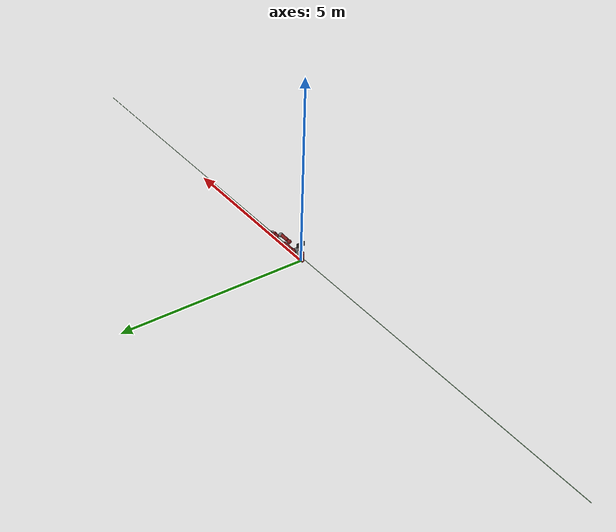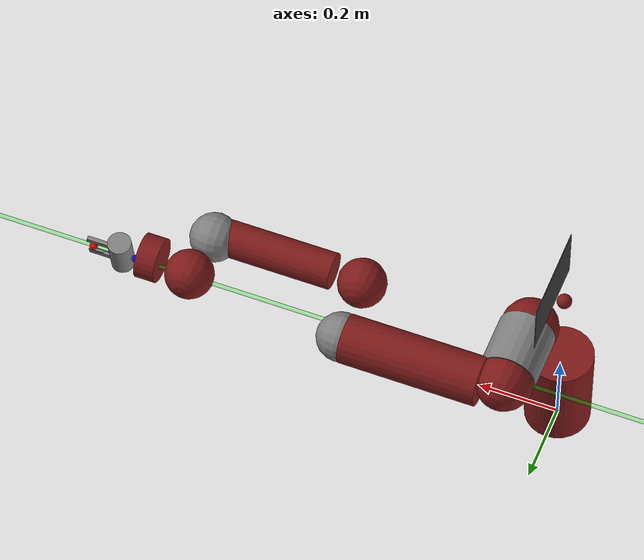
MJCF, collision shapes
<mujoco model="sawyer">
    <actuator>
    	<motor ctrllimited="true" ctrlrange="-80.0 80.0" joint="right_j0" name="torq_right_j0"/>
    	<motor ctrllimited="true" ctrlrange="-80.0 80.0" joint="right_j1" name="torq_right_j1"/>
    	<motor ctrllimited="true" ctrlrange="-40.0 40.0" joint="right_j2" name="torq_right_j2"/>
    	<motor ctrllimited="true" ctrlrange="-40.0 40.0" joint="right_j3" name="torq_right_j3"/>
    	<motor ctrllimited="true" ctrlrange="-9.0 9.0" joint="right_j4" name="torq_right_j4"/>
    	<motor ctrllimited="true" ctrlrange="-9.0 9.0" joint="right_j5" name="torq_right_j5"/>
    	<motor ctrllimited="true" ctrlrange="-9.0 9.0" joint="right_j6" name="torq_right_j6"/>
        <position ctrllimited="true" ctrlrange="-0.0115 0.020833" joint="r_finger_joint" kp="10000" name="gripper_r_finger_joint" forcelimited="true" forcerange="-20 20"/>
        <position ctrllimited="true" ctrlrange="-0.020833 0.0115" joint="l_finger_joint" kp="10000" name="gripper_l_finger_joint" forcelimited="true" forcerange="-20 20"/>
    </actuator>
    <asset>
    	<mesh file="robot_info/sawyer/meshes/base.stl" name="base"/>
    	<mesh file="robot_info/sawyer/meshes/l0.stl" name="l0"/>
    	<mesh file="robot_info/sawyer/meshes/head.stl" name="head"/>
    	<mesh file="robot_info/sawyer/meshes/l1.stl" name="l1"/>
    	<mesh file="robot_info/sawyer/meshes/l2.stl" name="l2"/>
    	<mesh file="robot_info/sawyer/meshes/l3.stl" name="l3"/>
    	<mesh file="robot_info/sawyer/meshes/l4.stl" name="l4"/>
    	<mesh file="robot_info/sawyer/meshes/l5.stl" name="l5"/>
    	<mesh file="robot_info/sawyer/meshes/l6.stl" name="l6"/>
        <mesh name="electric_gripper_base" file="robot_info/sawyer/meshes/rethink_gripper/electric_gripper_base.stl" />
        <mesh name="standard_narrow" file="robot_info/sawyer/meshes/rethink_gripper/standard_narrow.stl" />
        <mesh name="half_round_tip" file="robot_info/sawyer/meshes/rethink_gripper/half_round_tip.stl" />
        <mesh name="connector_plate" file="robot_info/sawyer/meshes/rethink_gripper/connector_plate.stl" />
    </asset>
    <worldbody>
    	<body name="base" pos="0 0 0">
			<!-- robot view -->
			<camera mode="fixed" name="robotview" pos="1.0 0 0.4" quat="0.653 0.271 0.271 0.653"/>
    		<inertial diaginertia="0 0 0" mass="0" pos="0 0 0"/>
            <!-- mount attached here -->
    		<body name="right_arm_base_link" pos="0 0 0">
    			<inertial diaginertia="0.00740351 0.00681776 0.00672942" mass="2.0687" pos="-0.0006241 -2.8025e-05 0.065404" quat="-0.209285 0.674441 0.227335 0.670558"/>
    			<geom conaffinity="0" contype="0" group="1" mesh="base" type="mesh" name="base_vis" rgba="0.5 0.1 0.1 1"/>
    			<geom pos="0 0 0.12" rgba="0.5 0.1 0.1 1" size="0.08 0.12" type="cylinder" name="base_col"/>
    			<body name="right_l0" pos="0 0 0.08">
    				<inertial diaginertia="0.0651588 0.0510944 0.0186218" mass="5.3213" pos="0.024366 0.010969 0.14363" quat="0.894823 0.00899958 -0.170275 0.412573"/>
    				<joint type="hinge" axis="0 0 1" limited="true" name="right_j0" pos="0 0 0" range="-3.0503 3.0503"/>
    				<geom conaffinity="0" contype="0" group="1" mesh="l0" type="mesh" name="link0_visual" rgba="0.5 0.1 0.1 1"/>
    				<geom pos="0.08 0 0.23" rgba="0.5 0.1 0.1 1" size="0.07" name="link0_collision"/>
    				<body name="head" pos="0 0 0.2965">
    					<inertial diaginertia="0.0118334 0.00827089 0.00496574" mass="1.5795" pos="0.0053207 -2.6549e-05 0.1021" quat="0.999993 7.08405e-05 -0.00359857 -0.000626247"/>
    					<!--Don't want to control the head joint so remove it from the kinematic tree-->
    					<geom conaffinity="0" contype="0" group="1" mesh="head" type="mesh" name="head_visual" rgba="0.5 0.1 0.1 1"/>
    					<geom pos="0 0 0.08" rgba="0.5 0.1 0.1 1" size="0.018" name="head_collision"/>
    					<body name="screen" pos="0.03 0 0.105" quat="0.5 0.5 0.5 0.5">
    						<inertial diaginertia="1e-08 1e-08 1e-08" mass="0.0001" pos="0 0 0"/>
    						<geom conaffinity="0" contype="0" group="1" size="0.12 0.07 0.001" type="box" name="screen_visual" rgba="0.2 0.2 0.2 1"/>
    						<geom rgba="0.2 0.2 0.2 1" size="0.001" name="screen_collision"/>
    					</body>
    					<body name="head_camera" pos="0.0228027 0 0.216572" quat="0.342813 -0.618449 0.618449 -0.342813">
    						<inertial diaginertia="0 0 0" mass="0" pos="0.0228027 0 0.216572" quat="0.342813 -0.618449 0.618449 -0.342813"/>
    					</body>
    				</body>
    				<body name="right_torso_itb" pos="-0.055 0 0.22" quat="0.707107 0 -0.707107 0">
    					<inertial diaginertia="1e-08 1e-08 1e-08" mass="0.0001" pos="0 0 0"/>
    				</body>
    				<body name="right_l1" pos="0.081 0.05 0.237" quat="0.5 -0.5 0.5 0.5">
    					<inertial diaginertia="0.0224339 0.0221624 0.0097097" mass="4.505" pos="-0.0030849 -0.026811 0.092521" quat="0.424888 0.891987 0.132364 -0.0794296"/>
    					<joint type="hinge" axis="0 0 1" limited="true" name="right_j1" pos="0 0 0" range="-3.8095 2.2736"/>
    					<geom conaffinity="0" contype="0" group="1" mesh="l1" type="mesh" name="link1_visual" rgba="0.5 0.1 0.1 1"/>
    					<geom pos="0 0 0.1225" rgba="0.5 0.1 0.1 1" size="0.07" name="link1_collision"/>
    					<body name="right_l2" pos="0 -0.14 0.1425" quat="0.707107 0.707107 0 0">
    						<inertial diaginertia="0.0257928 0.025506 0.00292515" mass="1.745" pos="-0.00016044 -0.014967 0.13582" quat="0.707831 -0.0524761 0.0516007 0.702537"/>
    						<joint type="hinge" axis="0 0 1" limited="true" name="right_j2" pos="0 0 0" range="-3.0426 3.0426"/>
    						<geom conaffinity="0" contype="0" group="1" mesh="l2" type="mesh" name="link2_visual" rgba="0.5 0.1 0.1 1"/>
    						<geom pos="0 0 0.08" rgba="0.5 0.1 0.1 1" size="0.06 0.17" type="cylinder" name="link2_collision"/>
    						<body name="right_l3" pos="0 -0.042 0.26" quat="0.707107 -0.707107 0 0">
    							<inertial diaginertia="0.0102404 0.0096997 0.00369622" mass="2.5097" pos="-0.0048135 -0.0281 -0.084154" quat="0.902999 0.385391 -0.0880901 0.168247"/>
    							<joint type="hinge" axis="0 0 1" limited="true" name="right_j3" pos="0 0 0" range="-3.0439 3.0439"/>
    							<geom conaffinity="0" contype="0" group="1" mesh="l3" type="mesh" name="link3_visual" rgba="0.5 0.1 0.1 1"/>
    							<geom pos="0 -0.01 -0.12" rgba="0.5 0.1 0.1 1" size="0.06" name="link3_collision"/>
    							<body name="right_l4" pos="0 -0.125 -0.1265" quat="0.707107 0.707107 0 0">
    								<inertial diaginertia="0.0136549 0.0135493 0.00127353" mass="1.1136" pos="-0.0018844 0.0069001 0.1341" quat="0.803612 0.031257 -0.0298334 0.593582"/>
    								<joint type="hinge" axis="0 0 1" limited="true" name="right_j4" pos="0 0 0" range="-2.9761 2.9761"/>
    								<geom conaffinity="0" contype="0" group="1" mesh="l4" type="mesh" name="link4_visual" rgba="0.5 0.1 0.1 1"/>
    								<geom pos="0 0 0.11" rgba="0.5 0.1 0.1 1" size="0.045 0.15" type="cylinder" name="link4_collision"/>
    								<body name="right_arm_itb" pos="-0.055 0 0.075" quat="0.707107 0 -0.707107 0">
    									<inertial diaginertia="1e-08 1e-08 1e-08" mass="0.0001" pos="0 0 0"/>
    								</body>
    								<body name="right_l5" pos="0 0.031 0.275" quat="0.707107 -0.707107 0 0">
    									<inertial diaginertia="0.00474131 0.00422857 0.00190672" mass="1.5625" pos="0.0061133 -0.023697 0.076416" quat="0.404076 0.9135 0.0473125 0.00158335"/>
    									<joint type="hinge" axis="0 0 1" limited="true" name="right_j5" pos="0 0 0" range="-2.9761 2.9761" damping="0.2"/>
    									<geom conaffinity="0" contype="0" group="1" mesh="l5" type="mesh" name="link5_visual" rgba="0.5 0.1 0.1 1"/>
    									<geom pos="0 0 0.1" rgba="0.5 0.1 0.1 1" size="0.06" name="link5_collision"/>
    									<body name="right_hand_camera" pos="0.039552 -0.033 0.0695" quat="0.707107 0 0.707107 0">
    										<inertial diaginertia="0 0 0" mass="0" pos="0.039552 -0.033 0.0695" quat="0.707107 0 0.707107 0"/>
    									</body>
    									<body name="right_wrist" pos="0 0 0.10541" quat="0.707107 0.707107 0 0">
    										<inertial diaginertia="0 0 0" mass="0" pos="0 0 0.10541" quat="0.707107 0.707107 0 0"/>
    									</body>
    									<body name="right_l6" pos="0 -0.11 0.1053" quat="0.0616248 0.06163 -0.704416 0.704416">
    										<inertial diaginertia="0.000360258 0.000311068 0.000214974" mass="0.3292" pos="-8.0726e-06 0.0085838 -0.0049566" quat="0.479044 0.515636 -0.513069 0.491322"/>
    										<joint type="hinge" axis="0 0 1" limited="true" name="right_j6" pos="0 0 0" range="-4.7124 4.7124" damping="0.1"/>
    										<geom conaffinity="0" contype="0" group="1" mesh="l6" type="mesh" name="link6_visual" rgba="0.5 0.1 0.1 1"/>
    										<geom pos="0 0.015 -0.01" rgba="0.5 0.1 0.1 1" size="0.055 0.025" type="cylinder" name="link6_collision"/>
    										<body name="right_hand" pos="0 0 0.024" quat="0.707105 0 0 0.707108">
    											<!-- This sites were added for visualization. They are all standardized between models-->
												<!-- Position mimics the gripper attachment point (right_hand) -->
												<!--  Y-axis should be perpendicular to grasping motion, and Z-axis should point out of the robot eef -->
												<site name="ee" pos="0 0 0" size="0.01 0.01 0.01" rgba="0 0 1 1" type="sphere" group="1"/>
												<site name="ee_x" pos="0 0 0" size="0.005 .1"  quat="0.707105 0.707108 0 0 " rgba="1 0 0 0" type="cylinder" group="1"/>
												<site name="ee_z" pos="0 0 0" size="0.005 .1" quat="0.707105 0 0 0.707108" rgba="0 0 1 0" type="cylinder" group="1"/>
												<site name="ee_y" pos="0 0 0" size="0.005 .1" quat="0.707105 0 0.707108 0 " rgba="0 1 0 0" type="cylinder" group="1"/>
												<!-- This camera points out from the eef. -->
                								<camera mode="fixed" name="eye_in_hand" pos="0.05 0 0" quat="0 0.707108 0.707108 0" fovy="75"/>
    									        <body name="gripper_base" pos="0 0 0">
                                                    <site name="ft_frame" pos="0 0 0" size="0.01 0.01 0.01" rgba="1 0 0 1" type="sphere" group="1"/>
                                                    <inertial pos="0 0 0" quat="-0.5 0.5 0.5 0.5" mass="0.3" diaginertia="3e-08 2e-08 2e-08" />
                                                    <geom type="mesh" contype="0" conaffinity="0" group="1" mesh="connector_plate" name="connector_plate" pos="0 0 0.0018" rgba="0.499 0.499 0.499 1"/>
                                                    <geom type="mesh" contype="0" conaffinity="0" group="1" mesh="electric_gripper_base" name="electric_gripper_base" pos="0 0 0.0194" rgba="0.499 0.499 0.499 1"/>
                                                    <geom size="0.029 0.05" quat="0 0 0.707107 0.707107" type="cylinder" group="0" name="gripper_base_col" pos="0.004 0.0 0.04"/>
                                                    <!-- This site was added for visualization. -->
                                                    <site name="grip_site" pos="0 0 0.109" size="0.01 0.01 0.01" rgba="1 0 0 0.5" type="sphere" group="1"/>
                                                    <body name="right_gripper" pos="0 0 0.109">
                                                        <geom name="right_gripper_geom" pos="0 0 0" size="0.01 0.01 0.01" rgba="1 0 0 0.5" type="sphere" group="1"/>
                                                    </body>
                                                    <!-- This site was added for visualization. -->
                                                    <site name="grip_site_cylinder" pos="0 0 0" size="0.005 10" rgba="0 1 0 0.3" type="cylinder" group="1"/>
                                                    <body name="l_finger" pos="0 0.01 0.0444">
                                                        <inertial pos="0 0 0" quat="0 0 0 -1" mass="0.02" diaginertia="0.01 0.01 0.01" />
                                                        <joint name="l_finger_joint" pos="0 0 0" axis="0 1 0" type="slide" limited="true" range="-0.0115 0.020833" damping="100"/>
                                                        <geom name="l_finger" quat="0 0 0 -1" type="mesh" contype="0" conaffinity="0" group="1" mesh="standard_narrow" rgba="0.499 0.499 0.499 1"/>
                                                        <geom size="0.005 0.00675 0.0375" pos="0 0.01725 0.04" quat="0 0 0 -1" type="box" group="0" conaffinity="1" contype="0" name="l_finger_g0" friction="0 0 0"/>
                                                        <geom size="0.005 0.025 0.0085" pos="-0.005 -0.003 0.0083" quat="0 0 0 -1" type="box" group="0" conaffinity="1" contype="0" name="l_finger_g1" friction="0 0 0"/>
                                                        <body name="l_finger_tip" pos="0 0.01725 0.075">
                                                            <inertial pos="0 0 0" quat="0 0 0 1" mass="0.01" diaginertia="0.01 0.01 0.01" />
                                                            <geom name="l_fingertip_g0_vis" quat="0 0 0 1" type="mesh" contype="0" conaffinity="0" group="1" mesh="half_round_tip" rgba="0.499 0.499 0.499 1"/>
                                                            <geom size="0.004 0.004 0.0185" pos="0 -0.0045 -0.015" quat="0 0 0 -1" type="box" group="0"  conaffinity="1" contype="0" name="l_fingertip_g0" friction="0 0 0"/>
                                                            <geom size="0.0035 0.004 0.0165" pos="0 -0.0047 -0.017" type="box"  conaffinity="1" contype="0" name="l_fingerpad_g0" friction="0 0 0"/>
                                                        </body>
                                                    </body>
                                                    <body name="r_finger" pos="0 -0.01 0.0444">
                                                        <inertial pos="0 0 0" mass="0.02" diaginertia="0.01 0.01 0.01" />
                                                        <joint name="r_finger_joint" pos="0 0 0" axis="0 1 0" type="slide" limited="true" range="-0.020833 0.0115" damping="100"/>
                                                        <geom name="r_finger" type="mesh" contype="0" conaffinity="0" group="1" mesh="standard_narrow" rgba="0.499 0.499 0.499 1"/>
                                                        <geom size="0.005 0.00675 0.0375" pos="0 -0.01725 0.04" type="box" group="0" conaffinity="1" contype="0" name="r_finger_g0" friction="0 0 0"/>
                                                        <geom size="0.005 0.025 0.0085" pos="0.005 0.003 0.0083" type="box" group="0" conaffinity="1" contype="0" name="r_finger_g1" friction="0 0 0"/>
                                                        <body name="r_finger_tip" pos="0 -0.01725 0.075">
                                                            <inertial pos="0 0 0" mass="0.01" diaginertia="0.01 0.01 0.01" />
                                                            <geom name="r_fingertip_g0_vis" type="mesh" contype="0" conaffinity="0" group="1" mesh="half_round_tip" rgba="0.499 0.499 0.499 1"/>
                                                            <geom size="0.004 0.004 0.0185" pos="0 0.0045 -0.015" type="box" group="0" conaffinity="1" contype="0" name="r_fingertip_g0" friction="0 0 0"/>
                                                            <geom size="0.0035 0.004 0.0165" pos="0 0.0047 -0.017" type="box"  conaffinity="1" contype="0" name="r_fingerpad_g0" friction="0 0 0"/>
                                                        </body>
                                                    </body>
                                                </body>

    										</body>
    									</body>
    								</body>
    								<body name="right_l4_2" pos="0 0 0">
    									<inertial diaginertia="1e-08 1e-08 1e-08" mass="1e-08" pos="1e-08 1e-08 1e-08" quat="0.820473 0.339851 -0.17592 0.424708"/>
    									<geom pos="0 0.01 0.26" size="0.06" name="right_l4_2"/>
    								</body>
    							</body>
    						</body>
    						<body name="right_l2_2" pos="0 0 0">
    							<inertial diaginertia="1e-08 1e-08 1e-08" mass="1e-08" pos="1e-08 1e-08 1e-08" quat="0.820473 0.339851 -0.17592 0.424708"/>
    							<geom pos="0 0 0.26" size="0.06" name="right_l2_2"/>
    						</body>
    					</body>
    					<body name="right_l1_2" pos="0 0 0">
    						<inertial diaginertia="1e-08 1e-08 1e-08" mass="1e-08" pos="1e-08 1e-08 1e-08" quat="0.820473 0.339851 -0.17592 0.424708"/>
    						<geom pos="0 0 0.035" size="0.07 0.07" type="cylinder" name="right_l1_2"/>
    					</body>
    				</body>
    			</body>
    		</body>
    	</body>
    </worldbody>
</mujoco>
